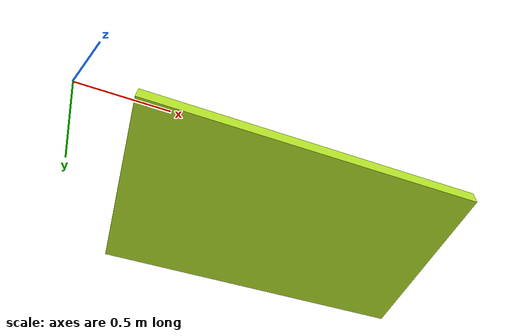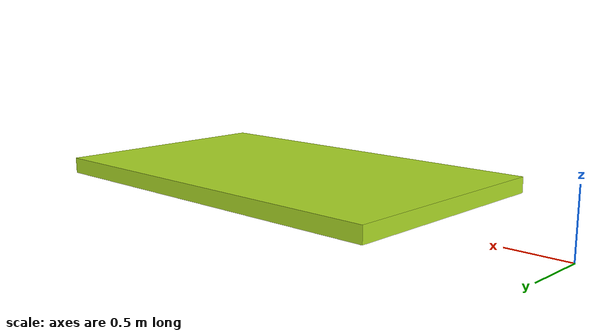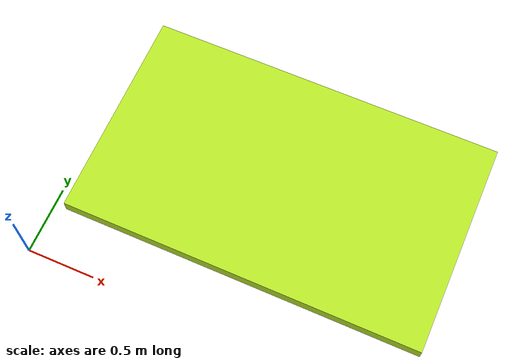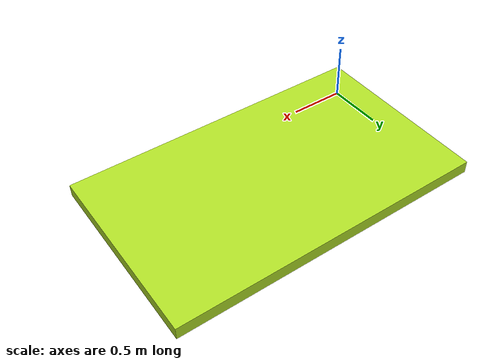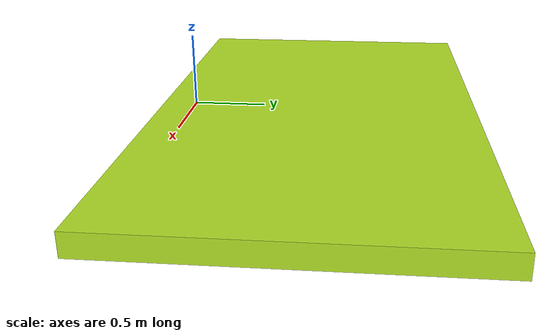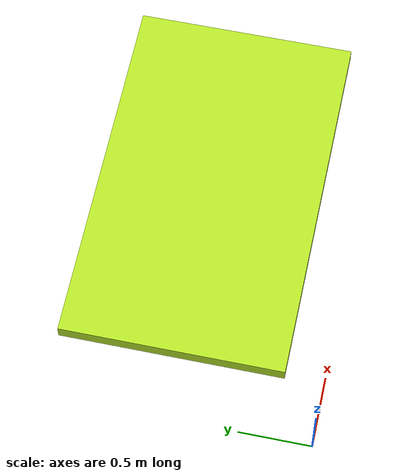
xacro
<?xml version="1.0"?>
<robot xmlns:xacro="http://www.ros.org/wiki/xacro" name="first_robot">

    <xacro:include filename="first_include.urdf" />
    <link name="world"></link>

    <joint name="base_joint" type="fixed">
        <origin xyz="1.5 1.0 0" rpy="0 0 0" />
        <parent link="world" />
        <child link="base_link" />
    </joint>

    <link name="base_link">
        <visual>
            <origin xyz="0 0 0.5" rpy="0 0 0" />
            <geometry>
                <box size="2.5 1.5 0.1" />
            </geometry>
            <material name="green" />
        </visual>

        <collision>
            <origin xyz="0 0 0.5" rpy="0 0 0" />
            <geometry>
                <box size="2.5 1.5 0.1" />
            </geometry>
        </collision>

        <inertial>
            <origin xyz="0 0 0.5" rpy="0 0 0" />
            <mass value="12" />
            <inertia ixx="2.26" ixy="0.0" ixz="0.0" iyy="6.26" iyz="0.0" izz="8.5" />
        </inertial>
    </link>

</robot>

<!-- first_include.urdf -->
<robot xmlns:xacro="http://www.ros.org/wiki/xacro">
    <material name="green">
        <color rgba="0.69 0.87 0.15 1" />
    </material>

    <material name="orange">
        <color rgba="1 0.3 0.1 1" />
    </material>

    <material name="white">
        <color rgba="1 1 1 1" />
    </material>
</robot>
